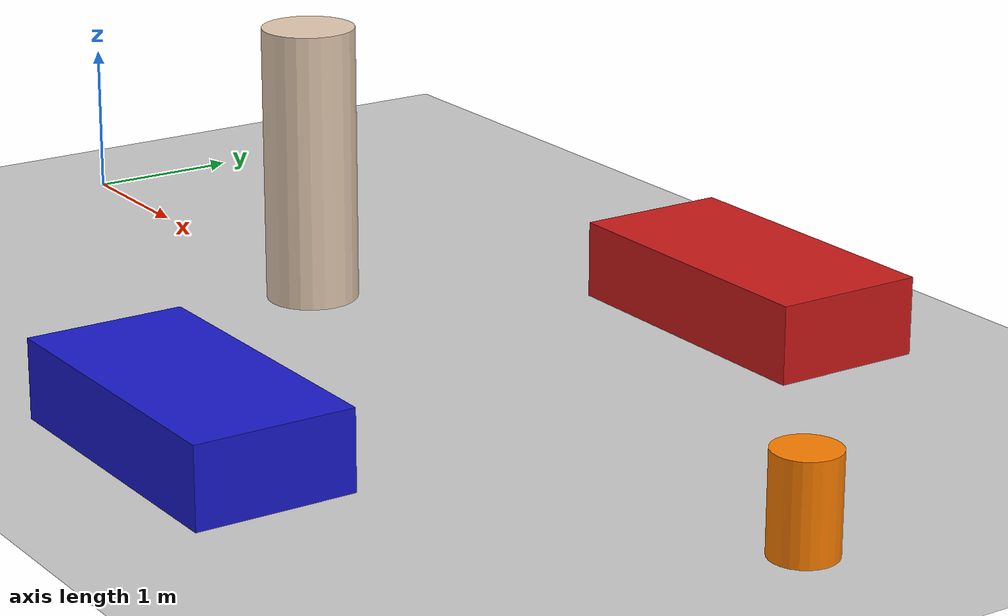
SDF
<?xml version="1.0"?>
<sdf version="1.6">
  <world name="default">

    <include>
      <uri>model://ground_plane</uri>
    </include>

    <include>
      <uri>model://sun</uri>
    </include>

    <!-- Add some colored boxes that look like cars/objects -->
    <model name="red_car">
      <pose>5 2 0.25 0 0 0</pose>
      <static>true</static>
      <link name="link">
        <collision name="collision">
          <geometry>
            <box>
              <size>2 1 0.5</size>
            </box>
          </geometry>
        </collision>
        <visual name="visual">
          <geometry>
            <box>
              <size>2 1 0.5</size>
            </box>
          </geometry>
          <material>
            <ambient>0.8 0.1 0.1 1</ambient>
            <diffuse>0.8 0.1 0.1 1</diffuse>
          </material>
        </visual>
      </link>
    </model>

    <model name="blue_car">
      <pose>5 -2 0.25 0 0 0</pose>
      <static>true</static>
      <link name="link">
        <collision name="collision">
          <geometry>
            <box>
              <size>2 1 0.5</size>
            </box>
          </geometry>
        </collision>
        <visual name="visual">
          <geometry>
            <box>
              <size>2 1 0.5</size>
            </box>
          </geometry>
          <material>
            <ambient>0.1 0.1 0.8 1</ambient>
            <diffuse>0.1 0.1 0.8 1</diffuse>
          </material>
        </visual>
      </link>
    </model>

    <model name="traffic_cone">
      <pose>8 0 0.3 0 0 0</pose>
      <static>true</static>
      <link name="link">
        <collision name="collision">
          <geometry>
            <cylinder>
              <radius>0.2</radius>
              <length>0.6</length>
            </cylinder>
          </geometry>
        </collision>
        <visual name="visual">
          <geometry>
            <cylinder>
              <radius>0.2</radius>
              <length>0.6</length>
            </cylinder>
          </geometry>
          <material>
            <ambient>1 0.5 0 1</ambient>
            <diffuse>1 0.5 0 1</diffuse>
          </material>
        </visual>
      </link>
    </model>

    <model name="person_proxy">
      <pose>3 0 0.9 0 0 0</pose>
      <static>true</static>
      <link name="link">
        <collision name="collision">
          <geometry>
            <cylinder>
              <radius>0.3</radius>
              <length>1.8</length>
            </cylinder>
          </geometry>
        </collision>
        <visual name="visual">
          <geometry>
            <cylinder>
              <radius>0.3</radius>
              <length>1.8</length>
            </cylinder>
          </geometry>
          <material>
            <ambient>0.9 0.8 0.7 1</ambient>
            <diffuse>0.9 0.8 0.7 1</diffuse>
          </material>
        </visual>
      </link>
    </model>

  </world>
</sdf>
